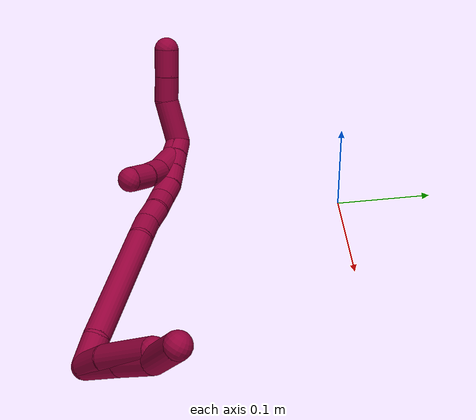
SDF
<sdf version="1.7">
 <world name="default">
  <model name="8">
   <static>0</static>
   <link name="8">
    <collision name="collision-cylinder-e_1_2_8">
     <pose>0.018434 -0.010397 -0.015823 2.56027 0.772029 1.87257</pose>
     <geometry><cylinder><radius>0.0125</radius><length>0.05285</length></cylinder></geometry>
     <surface>
      <friction><ode><mu>1.16</mu><mu2>1.16</mu2><slip1>0</slip1><slip2>0</slip2></ode></friction>
      <contact><ode><kp>1e+06</kp><kd>1</kd><max_vel>0</max_vel><min_depth>0.001</min_depth></ode></contact>
     </surface>
    </collision>
    <visual name="visual-cylinder-e_1_2_8">
     <pose>0.018434 -0.010397 -0.015823 2.56027 0.772029 1.87257</pose>
     <geometry><cylinder><radius>0.0125</radius><length>0.05285</length></cylinder></geometry>
     <material><ambient>0.584314 0 0.227451 1</ambient></material>
    </visual>
    <collision name="collision-cylinder-e_2_8_9">
     <pose>0.053077 -0.029784 -0.045025 2.54988 0.788223 1.87663</pose>
     <geometry><cylinder><radius>0.0125</radius><length>0.045718</length></cylinder></geometry>
     <surface>
      <friction><ode><mu>1.16</mu><mu2>1.16</mu2><slip1>0</slip1><slip2>0</slip2></ode></friction>
      <contact><ode><kp>1e+06</kp><kd>1</kd><max_vel>0</max_vel><min_depth>0.001</min_depth></ode></contact>
     </surface>
    </collision>
    <visual name="visual-cylinder-e_2_8_9">
     <pose>0.053077 -0.029784 -0.045025 2.54988 0.788223 1.87663</pose>
     <geometry><cylinder><radius>0.0125</radius><length>0.045718</length></cylinder></geometry>
     <material><ambient>0.584314 0 0.227451 1</ambient></material>
    </visual>
    <collision name="collision-cylinder-e_3_9_6">
     <pose>0.088895 -0.040825 -0.074913 3.01801 0.867184 2.87589</pose>
     <geometry><cylinder><radius>0.0125</radius><length>0.051432</length></cylinder></geometry>
     <surface>
      <friction><ode><mu>1.16</mu><mu2>1.16</mu2><slip1>0</slip1><slip2>0</slip2></ode></friction>
      <contact><ode><kp>1e+06</kp><kd>1</kd><max_vel>0</max_vel><min_depth>0.001</min_depth></ode></contact>
     </surface>
    </collision>
    <visual name="visual-cylinder-e_3_9_6">
     <pose>0.088895 -0.040825 -0.074913 3.01801 0.867184 2.87589</pose>
     <geometry><cylinder><radius>0.0125</radius><length>0.051432</length></cylinder></geometry>
     <material><ambient>0.584314 0 0.227451 1</ambient></material>
    </visual>
    <collision name="collision-cylinder-e_1_2_10">
     <pose>0.01302 -0.004271 -0.012306 2.80755 0.785146 2.36827</pose>
     <geometry><cylinder><radius>0.0125</radius><length>0.036835</length></cylinder></geometry>
     <surface>
      <friction><ode><mu>1.16</mu><mu2>1.16</mu2><slip1>0</slip1><slip2>0</slip2></ode></friction>
      <contact><ode><kp>1e+06</kp><kd>1</kd><max_vel>0</max_vel><min_depth>0.001</min_depth></ode></contact>
     </surface>
    </collision>
    <visual name="visual-cylinder-e_1_2_10">
     <pose>0.01302 -0.004271 -0.012306 2.80755 0.785146 2.36827</pose>
     <geometry><cylinder><radius>0.0125</radius><length>0.036835</length></cylinder></geometry>
     <material><ambient>0.584314 0 0.227451 1</ambient></material>
    </visual>
    <collision name="collision-cylinder-e_2_10_5">
     <pose>0.046949 -0.021346 -0.04452 2.57004 0.723568 1.82123</pose>
     <geometry><cylinder><radius>0.0125</radius><length>0.063165</length></cylinder></geometry>
     <surface>
      <friction><ode><mu>1.16</mu><mu2>1.16</mu2><slip1>0</slip1><slip2>0</slip2></ode></friction>
      <contact><ode><kp>1e+06</kp><kd>1</kd><max_vel>0</max_vel><min_depth>0.001</min_depth></ode></contact>
     </surface>
    </collision>
    <visual name="visual-cylinder-e_2_10_5">
     <pose>0.046949 -0.021346 -0.04452 2.57004 0.723568 1.82123</pose>
     <geometry><cylinder><radius>0.0125</radius><length>0.063165</length></cylinder></geometry>
     <material><ambient>0.584314 0 0.227451 1</ambient></material>
    </visual>
    <collision name="collision-cylinder-e_1_2_11">
     <pose>-0.008418 0.001755 -0.010976 -2.98308 -0.648142 2.67726</pose>
     <geometry><cylinder><radius>0.0125</radius><length>0.027886</length></cylinder></geometry>
     <surface>
      <friction><ode><mu>1.16</mu><mu2>1.16</mu2><slip1>0</slip1><slip2>0</slip2></ode></friction>
      <contact><ode><kp>1e+06</kp><kd>1</kd><max_vel>0</max_vel><min_depth>0.001</min_depth></ode></contact>
     </surface>
    </collision>
    <visual name="visual-cylinder-e_1_2_11">
     <pose>-0.008418 0.001755 -0.010976 -2.98308 -0.648142 2.67726</pose>
     <geometry><cylinder><radius>0.0125</radius><length>0.027886</length></cylinder></geometry>
     <material><ambient>0.584314 0 0.227451 1</ambient></material>
    </visual>
    <collision name="collision-cylinder-e_2_11_12">
     <pose>-0.063962 0.006238 -0.059908 -3.06981 -0.891522 2.99159</pose>
     <geometry><cylinder><radius>0.0125</radius><length>0.121145</length></cylinder></geometry>
     <surface>
      <friction><ode><mu>1.16</mu><mu2>1.16</mu2><slip1>0</slip1><slip2>0</slip2></ode></friction>
      <contact><ode><kp>1e+06</kp><kd>1</kd><max_vel>0</max_vel><min_depth>0.001</min_depth></ode></contact>
     </surface>
    </collision>
    <visual name="visual-cylinder-e_2_11_12">
     <pose>-0.063962 0.006238 -0.059908 -3.06981 -0.891522 2.99159</pose>
     <geometry><cylinder><radius>0.0125</radius><length>0.121145</length></cylinder></geometry>
     <material><ambient>0.584314 0 0.227451 1</ambient></material>
    </visual>
    <collision name="collision-cylinder-e_3_12_13">
     <pose>-0.123086 0.009043 -0.103026 -3.12689 -1.16439 3.11926</pose>
     <geometry><cylinder><radius>0.0125</radius><length>0.026121</length></cylinder></geometry>
     <surface>
      <friction><ode><mu>1.16</mu><mu2>1.16</mu2><slip1>0</slip1><slip2>0</slip2></ode></friction>
      <contact><ode><kp>1e+06</kp><kd>1</kd><max_vel>0</max_vel><min_depth>0.001</min_depth></ode></contact>
     </surface>
    </collision>
    <visual name="visual-cylinder-e_3_12_13">
     <pose>-0.123086 0.009043 -0.103026 -3.12689 -1.16439 3.11926</pose>
     <geometry><cylinder><radius>0.0125</radius><length>0.026121</length></cylinder></geometry>
     <material><ambient>0.584314 0 0.227451 1</ambient></material>
    </visual>
    <collision name="collision-cylinder-e_4_13_14">
     <pose>-0.14464 0.008034 -0.114855 2.98021 -0.95553 -2.83173</pose>
     <geometry><cylinder><radius>0.0125</radius><length>0.023407</length></cylinder></geometry>
     <surface>
      <friction><ode><mu>1.16</mu><mu2>1.16</mu2><slip1>0</slip1><slip2>0</slip2></ode></friction>
      <contact><ode><kp>1e+06</kp><kd>1</kd><max_vel>0</max_vel><min_depth>0.001</min_depth></ode></contact>
     </surface>
    </collision>
    <visual name="visual-cylinder-e_4_13_14">
     <pose>-0.14464 0.008034 -0.114855 2.98021 -0.95553 -2.83173</pose>
     <geometry><cylinder><radius>0.0125</radius><length>0.023407</length></cylinder></geometry>
     <material><ambient>0.584314 0 0.227451 1</ambient></material>
    </visual>
    <collision name="collision-cylinder-e_5_14_15">
     <pose>-0.163448 0.006698 -0.125805 3.08324 -1.13659 -3.05025</pose>
     <geometry><cylinder><radius>0.0125</radius><length>0.020393</length></cylinder></geometry>
     <surface>
      <friction><ode><mu>1.16</mu><mu2>1.16</mu2><slip1>0</slip1><slip2>0</slip2></ode></friction>
      <contact><ode><kp>1e+06</kp><kd>1</kd><max_vel>0</max_vel><min_depth>0.001</min_depth></ode></contact>
     </surface>
    </collision>
    <visual name="visual-cylinder-e_5_14_15">
     <pose>-0.163448 0.006698 -0.125805 3.08324 -1.13659 -3.05025</pose>
     <geometry><cylinder><radius>0.0125</radius><length>0.020393</length></cylinder></geometry>
     <material><ambient>0.584314 0 0.227451 1</ambient></material>
    </visual>
    <collision name="collision-cylinder-e_6_15_16">
     <pose>-0.180954 0.006134 -0.136573 3.09322 -0.904335 -3.04206</pose>
     <geometry><cylinder><radius>0.0125</radius><length>0.021006</length></cylinder></geometry>
     <surface>
      <friction><ode><mu>1.16</mu><mu2>1.16</mu2><slip1>0</slip1><slip2>0</slip2></ode></friction>
      <contact><ode><kp>1e+06</kp><kd>1</kd><max_vel>0</max_vel><min_depth>0.001</min_depth></ode></contact>
     </surface>
    </collision>
    <visual name="visual-cylinder-e_6_15_16">
     <pose>-0.180954 0.006134 -0.136573 3.09322 -0.904335 -3.04206</pose>
     <geometry><cylinder><radius>0.0125</radius><length>0.021006</length></cylinder></geometry>
     <material><ambient>0.584314 0 0.227451 1</ambient></material>
    </visual>
    <collision name="collision-cylinder-e_7_16_17">
     <pose>-0.196704 0.007959 -0.149341 -2.81349 -0.846016 2.43686</pose>
     <geometry><cylinder><radius>0.0125</radius><length>0.020022</length></cylinder></geometry>
     <surface>
      <friction><ode><mu>1.16</mu><mu2>1.16</mu2><slip1>0</slip1><slip2>0</slip2></ode></friction>
      <contact><ode><kp>1e+06</kp><kd>1</kd><max_vel>0</max_vel><min_depth>0.001</min_depth></ode></contact>
     </surface>
    </collision>
    <visual name="visual-cylinder-e_7_16_17">
     <pose>-0.196704 0.007959 -0.149341 -2.81349 -0.846016 2.43686</pose>
     <geometry><cylinder><radius>0.0125</radius><length>0.020022</length></cylinder></geometry>
     <material><ambient>0.584314 0 0.227451 1</ambient></material>
    </visual>
    <collision name="collision-cylinder-e_8_17_18">
     <pose>-0.211719 0.012229 -0.161869 -2.81269 -0.850505 2.43912</pose>
     <geometry><cylinder><radius>0.0125</radius><length>0.020011</length></cylinder></geometry>
     <surface>
      <friction><ode><mu>1.16</mu><mu2>1.16</mu2><slip1>0</slip1><slip2>0</slip2></ode></friction>
      <contact><ode><kp>1e+06</kp><kd>1</kd><max_vel>0</max_vel><min_depth>0.001</min_depth></ode></contact>
     </surface>
    </collision>
    <visual name="visual-cylinder-e_8_17_18">
     <pose>-0.211719 0.012229 -0.161869 -2.81269 -0.850505 2.43912</pose>
     <geometry><cylinder><radius>0.0125</radius><length>0.020011</length></cylinder></geometry>
     <material><ambient>0.584314 0 0.227451 1</ambient></material>
    </visual>
    <collision name="collision-cylinder-e_9_18_1">
     <pose>-0.22706 0.016192 -0.174079 -2.84364 -0.897528 2.53729</pose>
     <geometry><cylinder><radius>0.0125</radius><length>0.020009</length></cylinder></geometry>
     <surface>
      <friction><ode><mu>1.16</mu><mu2>1.16</mu2><slip1>0</slip1><slip2>0</slip2></ode></friction>
      <contact><ode><kp>1e+06</kp><kd>1</kd><max_vel>0</max_vel><min_depth>0.001</min_depth></ode></contact>
     </surface>
    </collision>
    <visual name="visual-cylinder-e_9_18_1">
     <pose>-0.22706 0.016192 -0.174079 -2.84364 -0.897528 2.53729</pose>
     <geometry><cylinder><radius>0.0125</radius><length>0.020009</length></cylinder></geometry>
     <material><ambient>0.584314 0 0.227451 1</ambient></material>
    </visual>
    <collision name="collision-cylinder-e_1_1_19">
     <pose>-0.235384 0.034709 -0.196087 -2.33664 -0.021698 0.050959</pose>
     <geometry><cylinder><radius>0.0125</radius><length>0.046308</length></cylinder></geometry>
     <surface>
      <friction><ode><mu>1.16</mu><mu2>1.16</mu2><slip1>0</slip1><slip2>0</slip2></ode></friction>
      <contact><ode><kp>1e+06</kp><kd>1</kd><max_vel>0</max_vel><min_depth>0.001</min_depth></ode></contact>
     </surface>
    </collision>
    <visual name="visual-cylinder-e_1_1_19">
     <pose>-0.235384 0.034709 -0.196087 -2.33664 -0.021698 0.050959</pose>
     <geometry><cylinder><radius>0.0125</radius><length>0.046308</length></cylinder></geometry>
     <material><ambient>0.584314 0 0.227451 1</ambient></material>
    </visual>
    <collision name="collision-cylinder-e_2_19_20">
     <pose>-0.235464 0.057593 -0.223144 -2.62887 0.033429 -0.127367</pose>
     <geometry><cylinder><radius>0.0125</radius><length>0.025287</length></cylinder></geometry>
     <surface>
      <friction><ode><mu>1.16</mu><mu2>1.16</mu2><slip1>0</slip1><slip2>0</slip2></ode></friction>
      <contact><ode><kp>1e+06</kp><kd>1</kd><max_vel>0</max_vel><min_depth>0.001</min_depth></ode></contact>
     </surface>
    </collision>
    <visual name="visual-cylinder-e_2_19_20">
     <pose>-0.235464 0.057593 -0.223144 -2.62887 0.033429 -0.127367</pose>
     <geometry><cylinder><radius>0.0125</radius><length>0.025287</length></cylinder></geometry>
     <material><ambient>0.584314 0 0.227451 1</ambient></material>
    </visual>
    <collision name="collision-cylinder-e_3_20_4">
     <pose>-0.234918 0.071117 -0.246323 -2.59966 0.008656 -0.031158</pose>
     <geometry><cylinder><radius>0.0125</radius><length>0.028406</length></cylinder></geometry>
     <surface>
      <friction><ode><mu>1.16</mu><mu2>1.16</mu2><slip1>0</slip1><slip2>0</slip2></ode></friction>
      <contact><ode><kp>1e+06</kp><kd>1</kd><max_vel>0</max_vel><min_depth>0.001</min_depth></ode></contact>
     </surface>
    </collision>
    <visual name="visual-cylinder-e_3_20_4">
     <pose>-0.234918 0.071117 -0.246323 -2.59966 0.008656 -0.031158</pose>
     <geometry><cylinder><radius>0.0125</radius><length>0.028406</length></cylinder></geometry>
     <material><ambient>0.584314 0 0.227451 1</ambient></material>
    </visual>
    <collision name="collision-cylinder-e_1_1_21">
     <pose>-0.226955 0.016925 -0.173252 0.160348 0.856137 0.073289</pose>
     <geometry><cylinder><radius>0.0125</radius><length>0.02099</length></cylinder></geometry>
     <surface>
      <friction><ode><mu>1.16</mu><mu2>1.16</mu2><slip1>0</slip1><slip2>0</slip2></ode></friction>
      <contact><ode><kp>1e+06</kp><kd>1</kd><max_vel>0</max_vel><min_depth>0.001</min_depth></ode></contact>
     </surface>
    </collision>
    <visual name="visual-cylinder-e_1_1_21">
     <pose>-0.226955 0.016925 -0.173252 0.160348 0.856137 0.073289</pose>
     <geometry><cylinder><radius>0.0125</radius><length>0.02099</length></cylinder></geometry>
     <material><ambient>0.584314 0 0.227451 1</ambient></material>
    </visual>
    <collision name="collision-cylinder-e_2_21_22">
     <pose>-0.206356 0.019056 -0.158323 -0.377637 0.966098 -0.199789</pose>
     <geometry><cylinder><radius>0.0125</radius><length>0.030805</length></cylinder></geometry>
     <surface>
      <friction><ode><mu>1.16</mu><mu2>1.16</mu2><slip1>0</slip1><slip2>0</slip2></ode></friction>
      <contact><ode><kp>1e+06</kp><kd>1</kd><max_vel>0</max_vel><min_depth>0.001</min_depth></ode></contact>
     </surface>
    </collision>
    <visual name="visual-cylinder-e_2_21_22">
     <pose>-0.206356 0.019056 -0.158323 -0.377637 0.966098 -0.199789</pose>
     <geometry><cylinder><radius>0.0125</radius><length>0.030805</length></cylinder></geometry>
     <material><ambient>0.584314 0 0.227451 1</ambient></material>
    </visual>
    <collision name="collision-cylinder-e_3_22_23">
     <pose>-0.183892 0.026718 -0.146459 -0.87208 1.03681 -0.519588</pose>
     <geometry><cylinder><radius>0.0125</radius><length>0.022755</length></cylinder></geometry>
     <surface>
      <friction><ode><mu>1.16</mu><mu2>1.16</mu2><slip1>0</slip1><slip2>0</slip2></ode></friction>
      <contact><ode><kp>1e+06</kp><kd>1</kd><max_vel>0</max_vel><min_depth>0.001</min_depth></ode></contact>
     </surface>
    </collision>
    <visual name="visual-cylinder-e_3_22_23">
     <pose>-0.183892 0.026718 -0.146459 -0.87208 1.03681 -0.519588</pose>
     <geometry><cylinder><radius>0.0125</radius><length>0.022755</length></cylinder></geometry>
     <material><ambient>0.584314 0 0.227451 1</ambient></material>
    </visual>
    <collision name="collision-cylinder-e_4_23_3">
     <pose>-0.163971 0.037717 -0.138701 -1.01983 0.920442 -0.540883</pose>
     <geometry><cylinder><radius>0.0125</radius><length>0.02545</length></cylinder></geometry>
     <surface>
      <friction><ode><mu>1.16</mu><mu2>1.16</mu2><slip1>0</slip1><slip2>0</slip2></ode></friction>
      <contact><ode><kp>1e+06</kp><kd>1</kd><max_vel>0</max_vel><min_depth>0.001</min_depth></ode></contact>
     </surface>
    </collision>
    <visual name="visual-cylinder-e_4_23_3">
     <pose>-0.163971 0.037717 -0.138701 -1.01983 0.920442 -0.540883</pose>
     <geometry><cylinder><radius>0.0125</radius><length>0.02545</length></cylinder></geometry>
     <material><ambient>0.584314 0 0.227451 1</ambient></material>
    </visual>
    <collision name="collision-sphere-3">
     <pose>-0.153843 0.044281 -0.134667 0 -0 0</pose>
     <geometry><sphere><radius>0.0125</radius></sphere></geometry>
     <surface>
      <friction><ode><mu>1.16</mu><mu2>1.16</mu2><slip1>0</slip1><slip2>0</slip2></ode></friction>
      <contact><ode><kp>1e+06</kp><kd>1</kd><max_vel>0</max_vel><min_depth>0.001</min_depth></ode></contact>
     </surface>
    </collision>
    <visual name="visual-sphere-3">
     <pose>-0.153843 0.044281 -0.134667 0 -0 0</pose>
     <geometry><sphere><radius>0.0125</radius></sphere></geometry>
     <material><ambient>0.584314 0 0.227451 1</ambient></material>
    </visual>
    <collision name="collision-sphere-23">
     <pose>-0.174098 0.031152 -0.142734 0 -0 0</pose>
     <geometry><sphere><radius>0.0125</radius></sphere></geometry>
     <surface>
      <friction><ode><mu>1.16</mu><mu2>1.16</mu2><slip1>0</slip1><slip2>0</slip2></ode></friction>
      <contact><ode><kp>1e+06</kp><kd>1</kd><max_vel>0</max_vel><min_depth>0.001</min_depth></ode></contact>
     </surface>
    </collision>
    <visual name="visual-sphere-23">
     <pose>-0.174098 0.031152 -0.142734 0 -0 0</pose>
     <geometry><sphere><radius>0.0125</radius></sphere></geometry>
     <material><ambient>0.584314 0 0.227451 1</ambient></material>
    </visual>
    <collision name="collision-sphere-22">
     <pose>-0.193685 0.022285 -0.150184 0 -0 0</pose>
     <geometry><sphere><radius>0.0125</radius></sphere></geometry>
     <surface>
      <friction><ode><mu>1.16</mu><mu2>1.16</mu2><slip1>0</slip1><slip2>0</slip2></ode></friction>
      <contact><ode><kp>1e+06</kp><kd>1</kd><max_vel>0</max_vel><min_depth>0.001</min_depth></ode></contact>
     </surface>
    </collision>
    <visual name="visual-sphere-22">
     <pose>-0.193685 0.022285 -0.150184 0 -0 0</pose>
     <geometry><sphere><radius>0.0125</radius></sphere></geometry>
     <material><ambient>0.584314 0 0.227451 1</ambient></material>
    </visual>
    <collision name="collision-sphere-21">
     <pose>-0.219027 0.015827 -0.166463 0 -0 0</pose>
     <geometry><sphere><radius>0.0125</radius></sphere></geometry>
     <surface>
      <friction><ode><mu>1.16</mu><mu2>1.16</mu2><slip1>0</slip1><slip2>0</slip2></ode></friction>
      <contact><ode><kp>1e+06</kp><kd>1</kd><max_vel>0</max_vel><min_depth>0.001</min_depth></ode></contact>
     </surface>
    </collision>
    <visual name="visual-sphere-21">
     <pose>-0.219027 0.015827 -0.166463 0 -0 0</pose>
     <geometry><sphere><radius>0.0125</radius></sphere></geometry>
     <material><ambient>0.584314 0 0.227451 1</ambient></material>
    </visual>
    <collision name="collision-sphere-4">
     <pose>-0.234795 0.078442 -0.25849 0 -0 0</pose>
     <geometry><sphere><radius>0.0125</radius></sphere></geometry>
     <surface>
      <friction><ode><mu>1.16</mu><mu2>1.16</mu2><slip1>0</slip1><slip2>0</slip2></ode></friction>
      <contact><ode><kp>1e+06</kp><kd>1</kd><max_vel>0</max_vel><min_depth>0.001</min_depth></ode></contact>
     </surface>
    </collision>
    <visual name="visual-sphere-4">
     <pose>-0.234795 0.078442 -0.25849 0 -0 0</pose>
     <geometry><sphere><radius>0.0125</radius></sphere></geometry>
     <material><ambient>0.584314 0 0.227451 1</ambient></material>
    </visual>
    <collision name="collision-sphere-20">
     <pose>-0.235041 0.063792 -0.234155 0 -0 0</pose>
     <geometry><sphere><radius>0.0125</radius></sphere></geometry>
     <surface>
      <friction><ode><mu>1.16</mu><mu2>1.16</mu2><slip1>0</slip1><slip2>0</slip2></ode></friction>
      <contact><ode><kp>1e+06</kp><kd>1</kd><max_vel>0</max_vel><min_depth>0.001</min_depth></ode></contact>
     </surface>
    </collision>
    <visual name="visual-sphere-20">
     <pose>-0.235041 0.063792 -0.234155 0 -0 0</pose>
     <geometry><sphere><radius>0.0125</radius></sphere></geometry>
     <material><ambient>0.584314 0 0.227451 1</ambient></material>
    </visual>
    <collision name="collision-sphere-5">
     <pose>0.067859 -0.034149 -0.064428 0 -0 0</pose>
     <geometry><sphere><radius>0.0125</radius></sphere></geometry>
     <surface>
      <friction><ode><mu>1.16</mu><mu2>1.16</mu2><slip1>0</slip1><slip2>0</slip2></ode></friction>
      <contact><ode><kp>1e+06</kp><kd>1</kd><max_vel>0</max_vel><min_depth>0.001</min_depth></ode></contact>
     </surface>
    </collision>
    <visual name="visual-sphere-5">
     <pose>0.067859 -0.034149 -0.064428 0 -0 0</pose>
     <geometry><sphere><radius>0.0125</radius></sphere></geometry>
     <material><ambient>0.584314 0 0.227451 1</ambient></material>
    </visual>
    <collision name="collision-sphere-10">
     <pose>0.02604 -0.008542 -0.024613 0 -0 0</pose>
     <geometry><sphere><radius>0.0125</radius></sphere></geometry>
     <surface>
      <friction><ode><mu>1.16</mu><mu2>1.16</mu2><slip1>0</slip1><slip2>0</slip2></ode></friction>
      <contact><ode><kp>1e+06</kp><kd>1</kd><max_vel>0</max_vel><min_depth>0.001</min_depth></ode></contact>
     </surface>
    </collision>
    <visual name="visual-sphere-10">
     <pose>0.02604 -0.008542 -0.024613 0 -0 0</pose>
     <geometry><sphere><radius>0.0125</radius></sphere></geometry>
     <material><ambient>0.584314 0 0.227451 1</ambient></material>
    </visual>
    <collision name="collision-sphere-6">
     <pose>0.108504 -0.042876 -0.091424 0 -0 0</pose>
     <geometry><sphere><radius>0.0125</radius></sphere></geometry>
     <surface>
      <friction><ode><mu>1.16</mu><mu2>1.16</mu2><slip1>0</slip1><slip2>0</slip2></ode></friction>
      <contact><ode><kp>1e+06</kp><kd>1</kd><max_vel>0</max_vel><min_depth>0.001</min_depth></ode></contact>
     </surface>
    </collision>
    <visual name="visual-sphere-6">
     <pose>0.108504 -0.042876 -0.091424 0 -0 0</pose>
     <geometry><sphere><radius>0.0125</radius></sphere></geometry>
     <material><ambient>0.584314 0 0.227451 1</ambient></material>
    </visual>
    <collision name="collision-sphere-9">
     <pose>0.069286 -0.038774 -0.058402 0 -0 0</pose>
     <geometry><sphere><radius>0.0125</radius></sphere></geometry>
     <surface>
      <friction><ode><mu>1.16</mu><mu2>1.16</mu2><slip1>0</slip1><slip2>0</slip2></ode></friction>
      <contact><ode><kp>1e+06</kp><kd>1</kd><max_vel>0</max_vel><min_depth>0.001</min_depth></ode></contact>
     </surface>
    </collision>
    <visual name="visual-sphere-9">
     <pose>0.069286 -0.038774 -0.058402 0 -0 0</pose>
     <geometry><sphere><radius>0.0125</radius></sphere></geometry>
     <material><ambient>0.584314 0 0.227451 1</ambient></material>
    </visual>
    <collision name="collision-sphere-2">
     <geometry><sphere><radius>0.0125</radius></sphere></geometry>
     <surface>
      <friction><ode><mu>1.16</mu><mu2>1.16</mu2><slip1>0</slip1><slip2>0</slip2></ode></friction>
      <contact><ode><kp>1e+06</kp><kd>1</kd><max_vel>0</max_vel><min_depth>0.001</min_depth></ode></contact>
     </surface>
    </collision>
    <visual name="visual-sphere-2">
     <geometry><sphere><radius>0.0125</radius></sphere></geometry>
     <material><ambient>0.584314 0 0.227451 1</ambient></material>
    </visual>
    <collision name="collision-sphere-19">
     <pose>-0.235886 0.051394 -0.212133 0 -0 0</pose>
     <geometry><sphere><radius>0.0125</radius></sphere></geometry>
     <surface>
      <friction><ode><mu>1.16</mu><mu2>1.16</mu2><slip1>0</slip1><slip2>0</slip2></ode></friction>
      <contact><ode><kp>1e+06</kp><kd>1</kd><max_vel>0</max_vel><min_depth>0.001</min_depth></ode></contact>
     </surface>
    </collision>
    <visual name="visual-sphere-19">
     <pose>-0.235886 0.051394 -0.212133 0 -0 0</pose>
     <geometry><sphere><radius>0.0125</radius></sphere></geometry>
     <material><ambient>0.584314 0 0.227451 1</ambient></material>
    </visual>
    <collision name="collision-sphere-8">
     <pose>0.036868 -0.020794 -0.031647 0 -0 0</pose>
     <geometry><sphere><radius>0.0125</radius></sphere></geometry>
     <surface>
      <friction><ode><mu>1.16</mu><mu2>1.16</mu2><slip1>0</slip1><slip2>0</slip2></ode></friction>
      <contact><ode><kp>1e+06</kp><kd>1</kd><max_vel>0</max_vel><min_depth>0.001</min_depth></ode></contact>
     </surface>
    </collision>
    <visual name="visual-sphere-8">
     <pose>0.036868 -0.020794 -0.031647 0 -0 0</pose>
     <geometry><sphere><radius>0.0125</radius></sphere></geometry>
     <material><ambient>0.584314 0 0.227451 1</ambient></material>
    </visual>
    <collision name="collision-sphere-11">
     <pose>-0.016835 0.003509 -0.021952 0 -0 0</pose>
     <geometry><sphere><radius>0.0125</radius></sphere></geometry>
     <surface>
      <friction><ode><mu>1.16</mu><mu2>1.16</mu2><slip1>0</slip1><slip2>0</slip2></ode></friction>
      <contact><ode><kp>1e+06</kp><kd>1</kd><max_vel>0</max_vel><min_depth>0.001</min_depth></ode></contact>
     </surface>
    </collision>
    <visual name="visual-sphere-11">
     <pose>-0.016835 0.003509 -0.021952 0 -0 0</pose>
     <geometry><sphere><radius>0.0125</radius></sphere></geometry>
     <material><ambient>0.584314 0 0.227451 1</ambient></material>
    </visual>
    <collision name="collision-sphere-12">
     <pose>-0.111089 0.008967 -0.097863 0 -0 0</pose>
     <geometry><sphere><radius>0.0125</radius></sphere></geometry>
     <surface>
      <friction><ode><mu>1.16</mu><mu2>1.16</mu2><slip1>0</slip1><slip2>0</slip2></ode></friction>
      <contact><ode><kp>1e+06</kp><kd>1</kd><max_vel>0</max_vel><min_depth>0.001</min_depth></ode></contact>
     </surface>
    </collision>
    <visual name="visual-sphere-12">
     <pose>-0.111089 0.008967 -0.097863 0 -0 0</pose>
     <geometry><sphere><radius>0.0125</radius></sphere></geometry>
     <material><ambient>0.584314 0 0.227451 1</ambient></material>
    </visual>
    <collision name="collision-sphere-13">
     <pose>-0.135083 0.009119 -0.108188 0 -0 0</pose>
     <geometry><sphere><radius>0.0125</radius></sphere></geometry>
     <surface>
      <friction><ode><mu>1.16</mu><mu2>1.16</mu2><slip1>0</slip1><slip2>0</slip2></ode></friction>
      <contact><ode><kp>1e+06</kp><kd>1</kd><max_vel>0</max_vel><min_depth>0.001</min_depth></ode></contact>
     </surface>
    </collision>
    <visual name="visual-sphere-13">
     <pose>-0.135083 0.009119 -0.108188 0 -0 0</pose>
     <geometry><sphere><radius>0.0125</radius></sphere></geometry>
     <material><ambient>0.584314 0 0.227451 1</ambient></material>
    </visual>
    <collision name="collision-sphere-14">
     <pose>-0.154198 0.006948 -0.121522 0 -0 0</pose>
     <geometry><sphere><radius>0.0125</radius></sphere></geometry>
     <surface>
      <friction><ode><mu>1.16</mu><mu2>1.16</mu2><slip1>0</slip1><slip2>0</slip2></ode></friction>
      <contact><ode><kp>1e+06</kp><kd>1</kd><max_vel>0</max_vel><min_depth>0.001</min_depth></ode></contact>
     </surface>
    </collision>
    <visual name="visual-sphere-14">
     <pose>-0.154198 0.006948 -0.121522 0 -0 0</pose>
     <geometry><sphere><radius>0.0125</radius></sphere></geometry>
     <material><ambient>0.584314 0 0.227451 1</ambient></material>
    </visual>
    <collision name="collision-sphere-15">
     <pose>-0.172698 0.006448 -0.130087 0 -0 0</pose>
     <geometry><sphere><radius>0.0125</radius></sphere></geometry>
     <surface>
      <friction><ode><mu>1.16</mu><mu2>1.16</mu2><slip1>0</slip1><slip2>0</slip2></ode></friction>
      <contact><ode><kp>1e+06</kp><kd>1</kd><max_vel>0</max_vel><min_depth>0.001</min_depth></ode></contact>
     </surface>
    </collision>
    <visual name="visual-sphere-15">
     <pose>-0.172698 0.006448 -0.130087 0 -0 0</pose>
     <geometry><sphere><radius>0.0125</radius></sphere></geometry>
     <material><ambient>0.584314 0 0.227451 1</ambient></material>
    </visual>
    <collision name="collision-sphere-16">
     <pose>-0.189209 0.00582 -0.143058 0 -0 0</pose>
     <geometry><sphere><radius>0.0125</radius></sphere></geometry>
     <surface>
      <friction><ode><mu>1.16</mu><mu2>1.16</mu2><slip1>0</slip1><slip2>0</slip2></ode></friction>
      <contact><ode><kp>1e+06</kp><kd>1</kd><max_vel>0</max_vel><min_depth>0.001</min_depth></ode></contact>
     </surface>
    </collision>
    <visual name="visual-sphere-16">
     <pose>-0.189209 0.00582 -0.143058 0 -0 0</pose>
     <geometry><sphere><radius>0.0125</radius></sphere></geometry>
     <material><ambient>0.584314 0 0.227451 1</ambient></material>
    </visual>
    <collision name="collision-sphere-17">
     <pose>-0.204198 0.010097 -0.155624 0 -0 0</pose>
     <geometry><sphere><radius>0.0125</radius></sphere></geometry>
     <surface>
      <friction><ode><mu>1.16</mu><mu2>1.16</mu2><slip1>0</slip1><slip2>0</slip2></ode></friction>
      <contact><ode><kp>1e+06</kp><kd>1</kd><max_vel>0</max_vel><min_depth>0.001</min_depth></ode></contact>
     </surface>
    </collision>
    <visual name="visual-sphere-17">
     <pose>-0.204198 0.010097 -0.155624 0 -0 0</pose>
     <geometry><sphere><radius>0.0125</radius></sphere></geometry>
     <material><ambient>0.584314 0 0.227451 1</ambient></material>
    </visual>
    <collision name="collision-sphere-18">
     <pose>-0.219239 0.014361 -0.168115 0 -0 0</pose>
     <geometry><sphere><radius>0.0125</radius></sphere></geometry>
     <surface>
      <friction><ode><mu>1.16</mu><mu2>1.16</mu2><slip1>0</slip1><slip2>0</slip2></ode></friction>
      <contact><ode><kp>1e+06</kp><kd>1</kd><max_vel>0</max_vel><min_depth>0.001</min_depth></ode></contact>
     </surface>
    </collision>
    <visual name="visual-sphere-18">
     <pose>-0.219239 0.014361 -0.168115 0 -0 0</pose>
     <geometry><sphere><radius>0.0125</radius></sphere></geometry>
     <material><ambient>0.584314 0 0.227451 1</ambient></material>
    </visual>
    <collision name="collision-sphere-1">
     <pose>-0.234882 0.018023 -0.180042 0 -0 0</pose>
     <geometry><sphere><radius>0.0125</radius></sphere></geometry>
     <surface>
      <friction><ode><mu>1.16</mu><mu2>1.16</mu2><slip1>0</slip1><slip2>0</slip2></ode></friction>
      <contact><ode><kp>1e+06</kp><kd>1</kd><max_vel>0</max_vel><min_depth>0.001</min_depth></ode></contact>
     </surface>
    </collision>
    <visual name="visual-sphere-1">
     <pose>-0.234882 0.018023 -0.180042 0 -0 0</pose>
     <geometry><sphere><radius>0.0125</radius></sphere></geometry>
     <material><ambient>0.584314 0 0.227451 1</ambient></material>
    </visual>
    <inertial>
     <pose>-0.088032 0.005733 -0.100266 0 -0 0</pose>
     <mass>0.75</mass>
     <inertia>
      <ixx>-4.8e-05</ixx>
      <ixy>0</ixy>
      <ixz>0</ixz>
      <iyy>0.000265</iyy>
      <iyz>0</iyz>
      <izz>4.9e-05</izz>
     </inertia>
    </inertial>
   </link>
   <pose>0.212827 -0.264153 0.035184 2.54898 -0.548629 -0.052732</pose>
  </model>
 </world>
</sdf>
